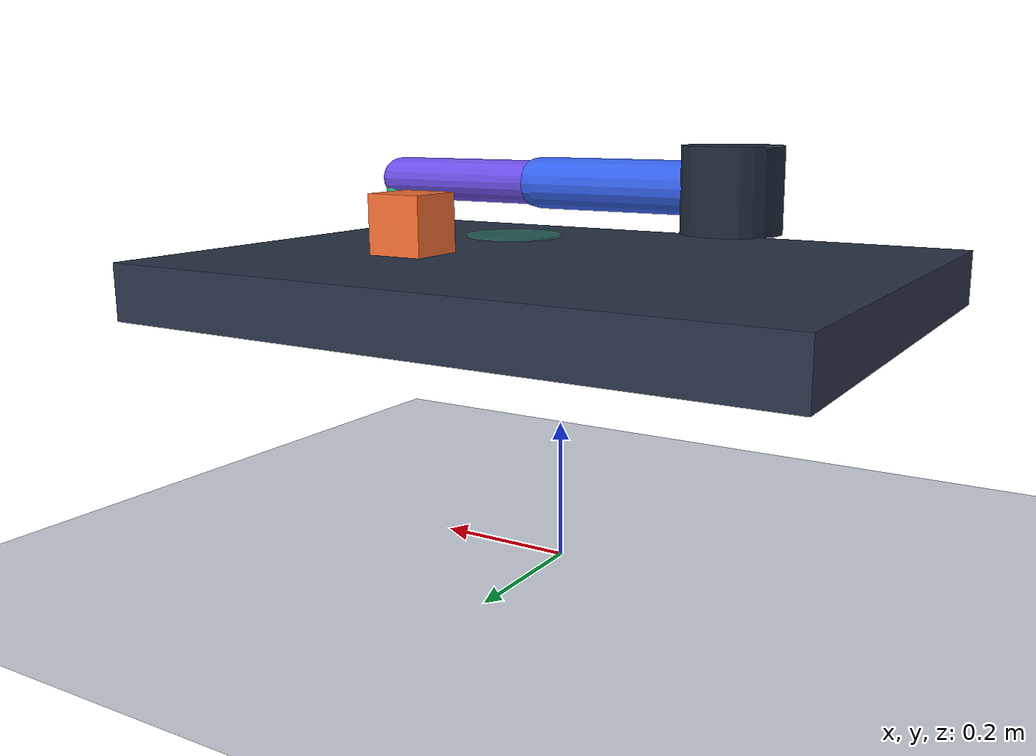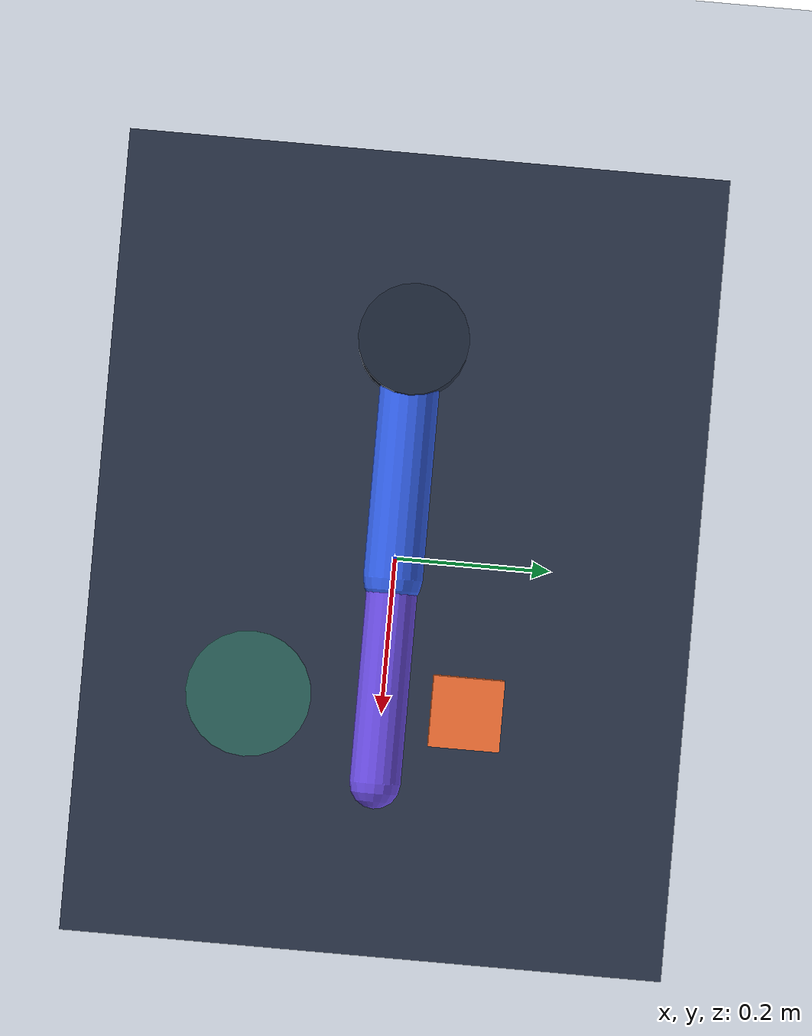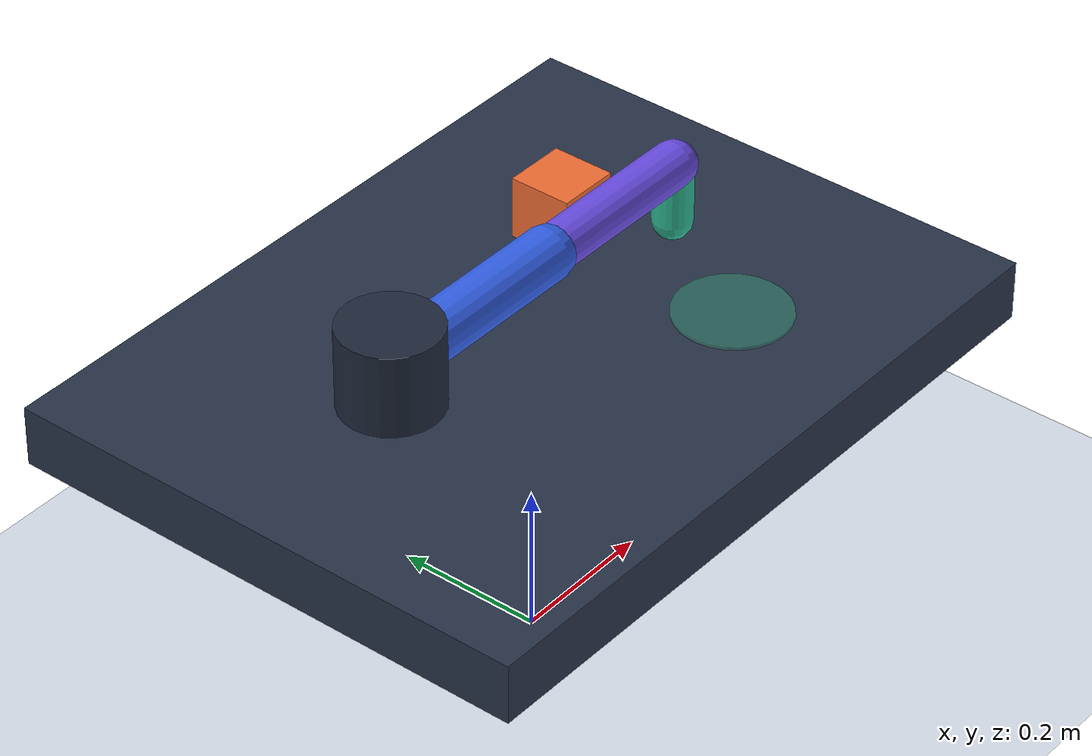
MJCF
<mujoco model="scene building workcell">
  <compiler angle="radian" autolimits="true"/>
  <option timestep="0.002" gravity="0 0 -9.81" integrator="implicitfast" cone="elliptic"/>

  <!-- Keep the robot reusable: swap this include without rewriting the workcell. -->
  <include file="robot.xml"/>

  <visual>
    <global azimuth="135" elevation="-24" offwidth="960" offheight="720"/>
    <quality shadowsize="2048"/>
  </visual>

  <asset>
    <texture name="floor_grid" type="2d" builtin="checker" width="512" height="512"
             rgb1="0.92 0.94 0.97" rgb2="0.78 0.82 0.88"/>
    <material name="floor_material" texture="floor_grid" texrepeat="5 5" reflectance="0.05"/>
    <material name="table_material" rgba="0.16 0.20 0.28 1"/>
    <material name="object_material" rgba="0.95 0.43 0.20 1"/>
  </asset>

  <worldbody>
    <light name="key_light" pos="0 -1.0 1.6" dir="0 0.5 -1" directional="true"/>
    <light name="fill_light" pos="-0.8 0.6 1.1" dir="0.5 -0.2 -1" directional="true"
           diffuse="0.45 0.48 0.55"/>
    <camera name="overview" pos="1.05 -1.15 0.95" xyaxes="0.74 0.67 0 -0.28 0.31 0.91"/>

    <geom name="floor" type="plane" size="1.2 1.2 0.05" material="floor_material"
          friction="1.0 0.01 0.001"/>
    <geom name="table" type="box" pos="0 0 0.40" size="0.48 0.36 0.04"
          material="table_material" friction="0.9 0.01 0.001"/>

    <body name="object" pos="0.18 0.10 0.485">
      <freejoint name="object_freejoint"/>
      <geom name="object_visual" type="box" size="0.042 0.042 0.042" group="2"
            contype="0" conaffinity="0" mass="0" material="object_material"/>
      <geom name="object_collision" type="box" size="0.04 0.04 0.04" group="3"
            mass="0.12" rgba="0.95 0.43 0.20 0.16" friction="0.8 0.01 0.001"/>
    </body>

    <site name="task_target" type="cylinder" pos="0.18 -0.16 0.445" size="0.075 0.002"
          rgba="0.20 0.75 0.52 0.35"/>
  </worldbody>
</mujoco>

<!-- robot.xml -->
<mujoco model="two link teaching arm">
  <!-- This file is a reusable robot module. scene.xml supplies the workcell. -->
  <default>
    <default class="arm_joint">
      <joint type="hinge" axis="0 0 1" damping="1.2" armature="0.015" limited="true"/>
    </default>
    <default class="arm_visual">
      <geom type="capsule" group="2" contype="0" conaffinity="0" mass="0"
            rgba="0.20 0.38 0.92 1"/>
    </default>
    <default class="arm_collision">
      <geom type="capsule" group="3" contype="1" conaffinity="1" density="650"
            rgba="0.20 0.38 0.92 0.18" friction="0.8 0.01 0.001"/>
    </default>
  </default>

  <worldbody>
    <body name="arm_base" pos="-0.25 0 0.54">
      <geom name="base_visual" type="cylinder" size="0.065 0.055" group="2"
            contype="0" conaffinity="0" rgba="0.12 0.16 0.23 1"/>

      <body name="link1">
        <joint name="shoulder" class="arm_joint" range="-1.40 1.40"/>
        <geom name="link1_visual" class="arm_visual" fromto="0 0 0 0.28 0 0" size="0.035"/>
        <geom name="link1_collision" class="arm_collision" fromto="0 0 0 0.28 0 0" size="0.032"/>

        <body name="link2" pos="0.28 0 0">
          <joint name="elbow" class="arm_joint" range="-2.20 2.20"/>
          <geom name="link2_visual" class="arm_visual" fromto="0 0 0 0.24 0 0" size="0.030"
                rgba="0.42 0.30 0.90 1"/>
          <geom name="link2_collision" class="arm_collision" fromto="0 0 0 0.24 0 0" size="0.027"/>

          <body name="tool" pos="0.24 0 0">
            <geom name="tool_visual" type="capsule" fromto="0 0 0 0 0 -0.08" size="0.026"
                  group="2" contype="0" conaffinity="0" mass="0" rgba="0.18 0.72 0.58 1"/>
            <geom name="tool_collision" type="capsule" fromto="0 0 0 0 0 -0.08" size="0.023"
                  group="3" contype="1" conaffinity="1" density="750"
                  rgba="0.18 0.72 0.58 0.18" friction="1.0 0.01 0.001"/>
            <site name="end_effector" pos="0 0 -0.08" size="0.012" rgba="1 0.35 0.15 1"/>
          </body>
        </body>
      </body>
    </body>
  </worldbody>

  <actuator>
    <position name="shoulder_position" joint="shoulder" kp="70" kv="8"
              ctrllimited="true" ctrlrange="-1.40 1.40"
              forcelimited="true" forcerange="-24 24"/>
    <position name="elbow_position" joint="elbow" kp="55" kv="7"
              ctrllimited="true" ctrlrange="-2.20 2.20"
              forcelimited="true" forcerange="-18 18"/>
  </actuator>

  <sensor>
    <jointpos name="shoulder_position_sensor" joint="shoulder"/>
    <jointpos name="elbow_position_sensor" joint="elbow"/>
    <jointvel name="shoulder_velocity_sensor" joint="shoulder"/>
    <jointvel name="elbow_velocity_sensor" joint="elbow"/>
    <actuatorfrc name="shoulder_force_sensor" actuator="shoulder_position"/>
    <actuatorfrc name="elbow_force_sensor" actuator="elbow_position"/>
    <framepos name="end_effector_position_sensor" objtype="site" objname="end_effector"/>
  </sensor>
</mujoco>
